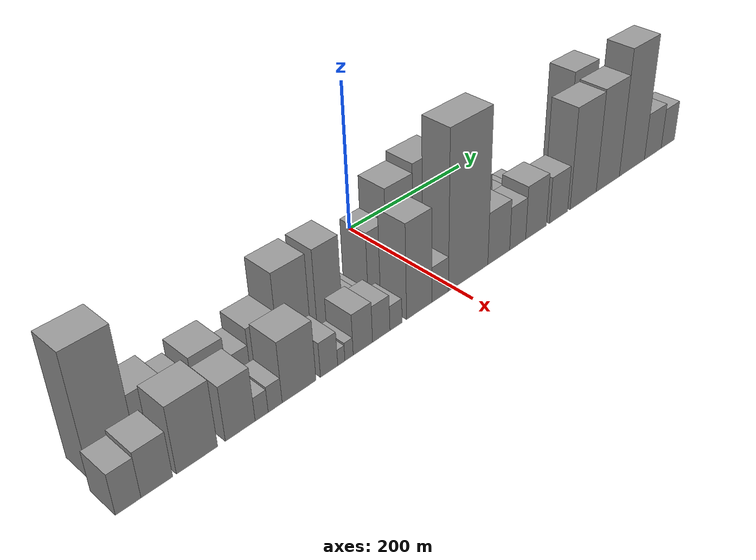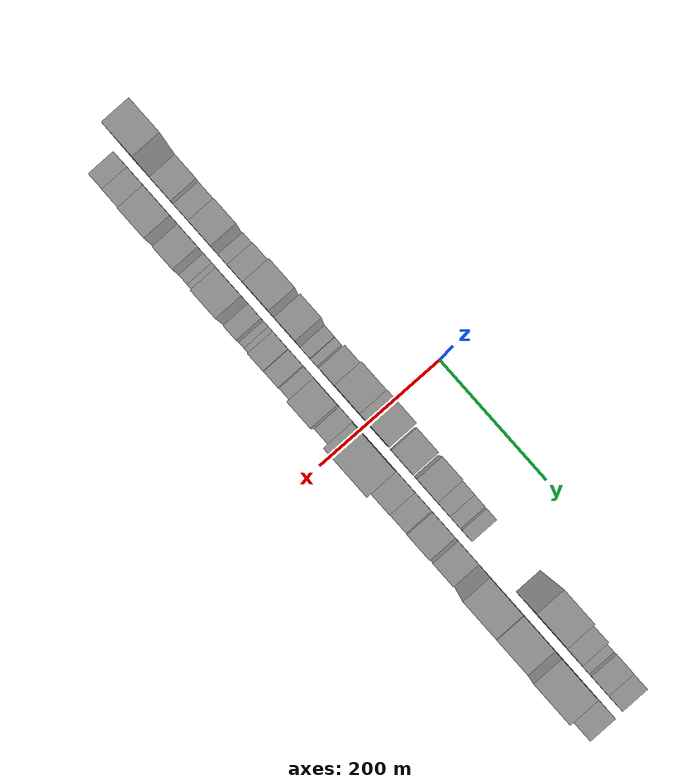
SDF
<sdf version="1.6">
 <world name="default">
  <scene>
   <sky><clouds><speed>12</speed></clouds></sky>
   <ambient>0.4 0.4 0.4 1</ambient>
   <background>0.7 0.7 0.7 1</background>
   <shadows>1</shadows>
  </scene>
  <gravity>0 0 -9.8066</gravity>
  <magnetic_field>6e-06 2.3e-05 -4.2e-05</magnetic_field>
  <physics default="0" name="default_physics" type="ode">
   <ode>
    <solver>
     <type>quick</type>
     <iters>10</iters>
     <sor>1.0</sor>
     <use_dynamic_moi_rescaling>0</use_dynamic_moi_rescaling>
    </solver>
    <constraints>
     <cfm>0</cfm>
     <erp>0.2</erp>
     <contact_max_correcting_vel>100</contact_max_correcting_vel>
     <contact_surface_layer>0.001</contact_surface_layer>
    </constraints>
   </ode>
   <max_step_size>0.004</max_step_size>
   <real_time_factor>1</real_time_factor>
   <real_time_update_rate>250</real_time_update_rate>
  </physics>
  <light name="sun" type="directional">
   <pose>0 0 10 0 0 0</pose>
   <diffuse>0.8 0.8 0.8 1</diffuse>
   <specular>0.2 0.2 0.2 1</specular>
   <attenuation>
    <range>1000</range>
    <constant>0.9</constant>
    <linear>0.01</linear>
    <quadratic>0.001</quadratic>
   </attenuation>
   <direction>-0.5 0.1 -0.9</direction>
  </light>
  <model name="building_1">
   <static>1</static>
   <pose>100.0000 -411.8144 0 0.000000 0.000000 0.000000</pose>
   <link name="link">
    <pose>0 0 76.50 0 0 0</pose>
    <collision name="collision"><geometry><box><size>40.0000 50.3711 153.0000</size></box></geometry></collision>
    <visual name="visual">
     <cast_shadows>0</cast_shadows>
     <geometry><box><size>40.0000 50.3711 153.0000</size></box></geometry>
     <material>
      <script>
       <uri>model://grey_wall/materials/scripts</uri>
       <uri>model://grey_wall/materials/textures</uri>
       <name>vrc/grey_wall</name>
      </script>
     </material>
    </visual>
   </link>
  </model>
  <model name="building_2">
   <static>1</static>
   <pose>100.0000 -367.8173 0 0.000000 0.000000 0.000000</pose>
   <link name="link">
    <pose>0 0 34.50 0 0 0</pose>
    <collision name="collision"><geometry><box><size>40.0000 37.6232 69.0000</size></box></geometry></collision>
    <visual name="visual">
     <cast_shadows>0</cast_shadows>
     <geometry><box><size>40.0000 37.6232 69.0000</size></box></geometry>
     <material>
      <script>
       <uri>model://grey_wall/materials/scripts</uri>
       <uri>model://grey_wall/materials/textures</uri>
       <name>vrc/grey_wall</name>
      </script>
     </material>
    </visual>
   </link>
  </model>
  <model name="building_3">
   <static>1</static>
   <pose>100.0000 -335.0411 0 0.000000 0.000000 0.000000</pose>
   <link name="link">
    <pose>0 0 27.00 0 0 0</pose>
    <collision name="collision"><geometry><box><size>40.0000 27.9292 54.0000</size></box></geometry></collision>
    <visual name="visual">
     <cast_shadows>0</cast_shadows>
     <geometry><box><size>40.0000 27.9292 54.0000</size></box></geometry>
     <material>
      <script>
       <uri>model://grey_wall/materials/scripts</uri>
       <uri>model://grey_wall/materials/textures</uri>
       <name>vrc/grey_wall</name>
      </script>
     </material>
    </visual>
   </link>
  </model>
  <model name="building_4">
   <static>1</static>
   <pose>100.0000 -298.1483 0 0.000000 0.000000 0.000000</pose>
   <link name="link">
    <pose>0 0 34.50 0 0 0</pose>
    <collision name="collision"><geometry><box><size>40.0000 39.8563 69.0000</size></box></geometry></collision>
    <visual name="visual">
     <cast_shadows>0</cast_shadows>
     <geometry><box><size>40.0000 39.8563 69.0000</size></box></geometry>
     <material>
      <script>
       <uri>model://grey_wall/materials/scripts</uri>
       <uri>model://grey_wall/materials/textures</uri>
       <name>vrc/grey_wall</name>
      </script>
     </material>
    </visual>
   </link>
  </model>
  <model name="building_5">
   <static>1</static>
   <pose>100.0000 -274.9726 0 0.000000 0.000000 0.000000</pose>
   <link name="link">
    <pose>0 0 7.50 0 0 0</pose>
    <collision name="collision"><geometry><box><size>40.0000 6.4951 15.0000</size></box></geometry></collision>
    <visual name="visual">
     <cast_shadows>0</cast_shadows>
     <geometry><box><size>40.0000 6.4951 15.0000</size></box></geometry>
     <material>
      <script>
       <uri>model://grey_wall/materials/scripts</uri>
       <uri>model://grey_wall/materials/textures</uri>
       <name>vrc/grey_wall</name>
      </script>
     </material>
    </visual>
   </link>
  </model>
  <model name="building_6">
   <static>1</static>
   <pose>100.0000 -261.0082 0 0.000000 0.000000 0.000000</pose>
   <link name="link">
    <pose>0 0 21.00 0 0 0</pose>
    <collision name="collision"><geometry><box><size>40.0000 21.4337 42.0000</size></box></geometry></collision>
    <visual name="visual">
     <cast_shadows>0</cast_shadows>
     <geometry><box><size>40.0000 21.4337 42.0000</size></box></geometry>
     <material>
      <script>
       <uri>model://grey_wall/materials/scripts</uri>
       <uri>model://grey_wall/materials/textures</uri>
       <name>vrc/grey_wall</name>
      </script>
     </material>
    </visual>
   </link>
  </model>
  <model name="building_7">
   <static>1</static>
   <pose>100.0000 -231.8019 0 0.000000 0.000000 0.000000</pose>
   <link name="link">
    <pose>0 0 31.50 0 0 0</pose>
    <collision name="collision"><geometry><box><size>40.0000 36.9789 63.0000</size></box></geometry></collision>
    <visual name="visual">
     <cast_shadows>0</cast_shadows>
     <geometry><box><size>40.0000 36.9789 63.0000</size></box></geometry>
     <material>
      <script>
       <uri>model://grey_wall/materials/scripts</uri>
       <uri>model://grey_wall/materials/textures</uri>
       <name>vrc/grey_wall</name>
      </script>
     </material>
    </visual>
   </link>
  </model>
  <model name="building_8">
   <static>1</static>
   <pose>100.0000 -191.1744 0 0.000000 0.000000 0.000000</pose>
   <link name="link">
    <pose>0 0 55.50 0 0 0</pose>
    <collision name="collision"><geometry><box><size>40.0000 44.2762 111.0000</size></box></geometry></collision>
    <visual name="visual">
     <cast_shadows>0</cast_shadows>
     <geometry><box><size>40.0000 44.2762 111.0000</size></box></geometry>
     <material>
      <script>
       <uri>model://grey_wall/materials/scripts</uri>
       <uri>model://grey_wall/materials/textures</uri>
       <name>vrc/grey_wall</name>
      </script>
     </material>
    </visual>
   </link>
  </model>
  <model name="building_9">
   <static>1</static>
   <pose>100.0000 -165.9184 0 0.000000 0.000000 0.000000</pose>
   <link name="link">
    <pose>0 0 7.50 0 0 0</pose>
    <collision name="collision"><geometry><box><size>40.0000 6.2359 15.0000</size></box></geometry></collision>
    <visual name="visual">
     <cast_shadows>0</cast_shadows>
     <geometry><box><size>40.0000 6.2359 15.0000</size></box></geometry>
     <material>
      <script>
       <uri>model://grey_wall/materials/scripts</uri>
       <uri>model://grey_wall/materials/textures</uri>
       <name>vrc/grey_wall</name>
      </script>
     </material>
    </visual>
   </link>
  </model>
  <model name="building_10">
   <static>1</static>
   <pose>100.0000 -141.6907 0 0.000000 0.000000 0.000000</pose>
   <link name="link">
    <pose>0 0 55.50 0 0 0</pose>
    <collision name="collision"><geometry><box><size>40.0000 36.2195 111.0000</size></box></geometry></collision>
    <visual name="visual">
     <cast_shadows>0</cast_shadows>
     <geometry><box><size>40.0000 36.2195 111.0000</size></box></geometry>
     <material>
      <script>
       <uri>model://grey_wall/materials/scripts</uri>
       <uri>model://grey_wall/materials/textures</uri>
       <name>vrc/grey_wall</name>
      </script>
     </material>
    </visual>
   </link>
  </model>
  <model name="building_11">
   <static>1</static>
   <pose>100.0000 -114.3132 0 0.000000 0.000000 0.000000</pose>
   <link name="link">
    <pose>0 0 16.50 0 0 0</pose>
    <collision name="collision"><geometry><box><size>40.0000 18.5354 33.0000</size></box></geometry></collision>
    <visual name="visual">
     <cast_shadows>0</cast_shadows>
     <geometry><box><size>40.0000 18.5354 33.0000</size></box></geometry>
     <material>
      <script>
       <uri>model://grey_wall/materials/scripts</uri>
       <uri>model://grey_wall/materials/textures</uri>
       <name>vrc/grey_wall</name>
      </script>
     </material>
    </visual>
   </link>
  </model>
  <model name="building_12">
   <static>1</static>
   <pose>100.0000 -98.8612 0 0.000000 0.000000 0.000000</pose>
   <link name="link">
    <pose>0 0 13.50 0 0 0</pose>
    <collision name="collision"><geometry><box><size>40.0000 12.3686 27.0000</size></box></geometry></collision>
    <visual name="visual">
     <cast_shadows>0</cast_shadows>
     <geometry><box><size>40.0000 12.3686 27.0000</size></box></geometry>
     <material>
      <script>
       <uri>model://grey_wall/materials/scripts</uri>
       <uri>model://grey_wall/materials/textures</uri>
       <name>vrc/grey_wall</name>
      </script>
     </material>
    </visual>
   </link>
  </model>
  <model name="building_13">
   <static>1</static>
   <pose>100.0000 -69.9411 0 0.000000 0.000000 0.000000</pose>
   <link name="link">
    <pose>0 0 46.50 0 0 0</pose>
    <collision name="collision"><geometry><box><size>40.0000 29.4715 93.0000</size></box></geometry></collision>
    <visual name="visual">
     <cast_shadows>0</cast_shadows>
     <geometry><box><size>40.0000 29.4715 93.0000</size></box></geometry>
     <material>
      <script>
       <uri>model://grey_wall/materials/scripts</uri>
       <uri>model://grey_wall/materials/textures</uri>
       <name>vrc/grey_wall</name>
      </script>
     </material>
    </visual>
   </link>
  </model>
  <model name="building_14">
   <static>1</static>
   <pose>100.0000 -33.9210 0 0.000000 0.000000 0.000000</pose>
   <link name="link">
    <pose>0 0 67.50 0 0 0</pose>
    <collision name="collision"><geometry><box><size>40.0000 42.5688 135.0000</size></box></geometry></collision>
    <visual name="visual">
     <cast_shadows>0</cast_shadows>
     <geometry><box><size>40.0000 42.5688 135.0000</size></box></geometry>
     <material>
      <script>
       <uri>model://grey_wall/materials/scripts</uri>
       <uri>model://grey_wall/materials/textures</uri>
       <name>vrc/grey_wall</name>
      </script>
     </material>
    </visual>
   </link>
  </model>
  <model name="building_15">
   <static>1</static>
   <pose>100.0000 11.8636 0 0.000000 0.000000 0.000000</pose>
   <link name="link">
    <pose>0 0 73.50 0 0 0</pose>
    <collision name="collision"><geometry><box><size>40.0000 49.0002 147.0000</size></box></geometry></collision>
    <visual name="visual">
     <cast_shadows>0</cast_shadows>
     <geometry><box><size>40.0000 49.0002 147.0000</size></box></geometry>
     <material>
      <script>
       <uri>model://grey_wall/materials/scripts</uri>
       <uri>model://grey_wall/materials/textures</uri>
       <name>vrc/grey_wall</name>
      </script>
     </material>
    </visual>
   </link>
  </model>
  <model name="building_16">
   <static>1</static>
   <pose>100.0000 61.9835 0 0.000000 0.000000 0.000000</pose>
   <link name="link">
    <pose>0 0 34.50 0 0 0</pose>
    <collision name="collision"><geometry><box><size>40.0000 39.2396 69.0000</size></box></geometry></collision>
    <visual name="visual">
     <cast_shadows>0</cast_shadows>
     <geometry><box><size>40.0000 39.2396 69.0000</size></box></geometry>
     <material>
      <script>
       <uri>model://grey_wall/materials/scripts</uri>
       <uri>model://grey_wall/materials/textures</uri>
       <name>vrc/grey_wall</name>
      </script>
     </material>
    </visual>
   </link>
  </model>
  <model name="building_17">
   <static>1</static>
   <pose>100.0000 105.9616 0 0.000000 0.000000 0.000000</pose>
   <link name="link">
    <pose>0 0 36.00 0 0 0</pose>
    <collision name="collision"><geometry><box><size>40.0000 36.7165 72.0000</size></box></geometry></collision>
    <visual name="visual">
     <cast_shadows>0</cast_shadows>
     <geometry><box><size>40.0000 36.7165 72.0000</size></box></geometry>
     <material>
      <script>
       <uri>model://grey_wall/materials/scripts</uri>
       <uri>model://grey_wall/materials/textures</uri>
       <name>vrc/grey_wall</name>
      </script>
     </material>
    </visual>
   </link>
  </model>
  <model name="building_18">
   <static>1</static>
   <pose>100.0000 136.8657 0 0.000000 0.000000 0.000000</pose>
   <link name="link">
    <pose>0 0 22.50 0 0 0</pose>
    <collision name="collision"><geometry><box><size>40.0000 25.0917 45.0000</size></box></geometry></collision>
    <visual name="visual">
     <cast_shadows>0</cast_shadows>
     <geometry><box><size>40.0000 25.0917 45.0000</size></box></geometry>
     <material>
      <script>
       <uri>model://grey_wall/materials/scripts</uri>
       <uri>model://grey_wall/materials/textures</uri>
       <name>vrc/grey_wall</name>
      </script>
     </material>
    </visual>
   </link>
  </model>
  <model name="building_19">
   <static>1</static>
   <pose>100.0000 159.6267 0 0.000000 0.000000 0.000000</pose>
   <link name="link">
    <pose>0 0 18.00 0 0 0</pose>
    <collision name="collision"><geometry><box><size>40.0000 20.4303 36.0000</size></box></geometry></collision>
    <visual name="visual">
     <cast_shadows>0</cast_shadows>
     <geometry><box><size>40.0000 20.4303 36.0000</size></box></geometry>
     <material>
      <script>
       <uri>model://grey_wall/materials/scripts</uri>
       <uri>model://grey_wall/materials/textures</uri>
       <name>vrc/grey_wall</name>
      </script>
     </material>
    </visual>
   </link>
  </model>
  <model name="building_20">
   <static>1</static>
   <pose>100.0000 182.1407 0 0.000000 0.000000 0.000000</pose>
   <link name="link">
    <pose>0 0 16.50 0 0 0</pose>
    <collision name="collision"><geometry><box><size>40.0000 18.5978 33.0000</size></box></geometry></collision>
    <visual name="visual">
     <cast_shadows>0</cast_shadows>
     <geometry><box><size>40.0000 18.5978 33.0000</size></box></geometry>
     <material>
      <script>
       <uri>model://grey_wall/materials/scripts</uri>
       <uri>model://grey_wall/materials/textures</uri>
       <name>vrc/grey_wall</name>
      </script>
     </material>
    </visual>
   </link>
  </model>
  <model name="building_21">
   <static>1</static>
   <pose>100.0000 304.6281 0 0.000000 0.000000 0.000000</pose>
   <link name="link">
    <pose>0 0 75.00 0 0 0</pose>
    <collision name="collision"><geometry><box><size>40.0000 50.7923 150.0000</size></box></geometry></collision>
    <visual name="visual">
     <cast_shadows>0</cast_shadows>
     <geometry><box><size>40.0000 50.7923 150.0000</size></box></geometry>
     <material>
      <script>
       <uri>model://grey_wall/materials/scripts</uri>
       <uri>model://grey_wall/materials/textures</uri>
       <name>vrc/grey_wall</name>
      </script>
     </material>
    </visual>
   </link>
  </model>
  <model name="building_22">
   <static>1</static>
   <pose>100.0000 350.2677 0 0.000000 0.000000 0.000000</pose>
   <link name="link">
    <pose>0 0 51.00 0 0 0</pose>
    <collision name="collision"><geometry><box><size>40.0000 40.4869 102.0000</size></box></geometry></collision>
    <visual name="visual">
     <cast_shadows>0</cast_shadows>
     <geometry><box><size>40.0000 40.4869 102.0000</size></box></geometry>
     <material>
      <script>
       <uri>model://grey_wall/materials/scripts</uri>
       <uri>model://grey_wall/materials/textures</uri>
       <name>vrc/grey_wall</name>
      </script>
     </material>
    </visual>
   </link>
  </model>
  <model name="building_23">
   <static>1</static>
   <pose>100.0000 389.9791 0 0.000000 0.000000 0.000000</pose>
   <link name="link">
    <pose>0 0 21.00 0 0 0</pose>
    <collision name="collision"><geometry><box><size>40.0000 24.9360 42.0000</size></box></geometry></collision>
    <visual name="visual">
     <cast_shadows>0</cast_shadows>
     <geometry><box><size>40.0000 24.9360 42.0000</size></box></geometry>
     <material>
      <script>
       <uri>model://grey_wall/materials/scripts</uri>
       <uri>model://grey_wall/materials/textures</uri>
       <name>vrc/grey_wall</name>
      </script>
     </material>
    </visual>
   </link>
  </model>
  <model name="building_24">
   <static>1</static>
   <pose>100.0000 418.0944 0 0.000000 0.000000 0.000000</pose>
   <link name="link">
    <pose>0 0 27.00 0 0 0</pose>
    <collision name="collision"><geometry><box><size>40.0000 31.2947 54.0000</size></box></geometry></collision>
    <visual name="visual">
     <cast_shadows>0</cast_shadows>
     <geometry><box><size>40.0000 31.2947 54.0000</size></box></geometry>
     <material>
      <script>
       <uri>model://grey_wall/materials/scripts</uri>
       <uri>model://grey_wall/materials/textures</uri>
       <name>vrc/grey_wall</name>
      </script>
     </material>
    </visual>
   </link>
  </model>
  <model name="building_25">
   <static>1</static>
   <pose>100.0000 447.2042 0 0.000000 0.000000 0.000000</pose>
   <link name="link">
    <pose>0 0 24.00 0 0 0</pose>
    <collision name="collision"><geometry><box><size>40.0000 26.9249 48.0000</size></box></geometry></collision>
    <visual name="visual">
     <cast_shadows>0</cast_shadows>
     <geometry><box><size>40.0000 26.9249 48.0000</size></box></geometry>
     <material>
      <script>
       <uri>model://grey_wall/materials/scripts</uri>
       <uri>model://grey_wall/materials/textures</uri>
       <name>vrc/grey_wall</name>
      </script>
     </material>
    </visual>
   </link>
  </model>
  <model name="building_26">
   <static>1</static>
   <pose>152.0000 -430.6782 0 0.000000 0.000000 0.000000</pose>
   <link name="link">
    <pose>0 0 25.50 0 0 0</pose>
    <collision name="collision"><geometry><box><size>40.0000 26.6437 51.0000</size></box></geometry></collision>
    <visual name="visual">
     <cast_shadows>0</cast_shadows>
     <geometry><box><size>40.0000 26.6437 51.0000</size></box></geometry>
     <material>
      <script>
       <uri>model://grey_wall/materials/scripts</uri>
       <uri>model://grey_wall/materials/textures</uri>
       <name>vrc/grey_wall</name>
      </script>
     </material>
    </visual>
   </link>
  </model>
  <model name="building_27">
   <static>1</static>
   <pose>152.0000 -400.2870 0 0.000000 0.000000 0.000000</pose>
   <link name="link">
    <pose>0 0 28.50 0 0 0</pose>
    <collision name="collision"><geometry><box><size>40.0000 34.1387 57.0000</size></box></geometry></collision>
    <visual name="visual">
     <cast_shadows>0</cast_shadows>
     <geometry><box><size>40.0000 34.1387 57.0000</size></box></geometry>
     <material>
      <script>
       <uri>model://grey_wall/materials/scripts</uri>
       <uri>model://grey_wall/materials/textures</uri>
       <name>vrc/grey_wall</name>
      </script>
     </material>
    </visual>
   </link>
  </model>
  <model name="building_28">
   <static>1</static>
   <pose>152.0000 -355.7725 0 0.000000 0.000000 0.000000</pose>
   <link name="link">
    <pose>0 0 42.00 0 0 0</pose>
    <collision name="collision"><geometry><box><size>40.0000 46.8903 84.0000</size></box></geometry></collision>
    <visual name="visual">
     <cast_shadows>0</cast_shadows>
     <geometry><box><size>40.0000 46.8903 84.0000</size></box></geometry>
     <material>
      <script>
       <uri>model://grey_wall/materials/scripts</uri>
       <uri>model://grey_wall/materials/textures</uri>
       <name>vrc/grey_wall</name>
      </script>
     </material>
    </visual>
   </link>
  </model>
  <model name="building_29">
   <static>1</static>
   <pose>152.0000 -305.3131 0 0.000000 0.000000 0.000000</pose>
   <link name="link">
    <pose>0 0 34.50 0 0 0</pose>
    <collision name="collision"><geometry><box><size>40.0000 36.0286 69.0000</size></box></geometry></collision>
    <visual name="visual">
     <cast_shadows>0</cast_shadows>
     <geometry><box><size>40.0000 36.0286 69.0000</size></box></geometry>
     <material>
      <script>
       <uri>model://grey_wall/materials/scripts</uri>
       <uri>model://grey_wall/materials/textures</uri>
       <name>vrc/grey_wall</name>
      </script>
     </material>
    </visual>
   </link>
  </model>
  <model name="building_30">
   <static>1</static>
   <pose>152.0000 -279.1874 0 0.000000 0.000000 0.000000</pose>
   <link name="link">
    <pose>0 0 15.00 0 0 0</pose>
    <collision name="collision"><geometry><box><size>40.0000 16.2227 30.0000</size></box></geometry></collision>
    <visual name="visual">
     <cast_shadows>0</cast_shadows>
     <geometry><box><size>40.0000 16.2227 30.0000</size></box></geometry>
     <material>
      <script>
       <uri>model://grey_wall/materials/scripts</uri>
       <uri>model://grey_wall/materials/textures</uri>
       <name>vrc/grey_wall</name>
      </script>
     </material>
    </visual>
   </link>
  </model>
  <model name="building_31">
   <static>1</static>
   <pose>152.0000 -262.1687 0 0.000000 0.000000 0.000000</pose>
   <link name="link">
    <pose>0 0 16.50 0 0 0</pose>
    <collision name="collision"><geometry><box><size>40.0000 17.8147 33.0000</size></box></geometry></collision>
    <visual name="visual">
     <cast_shadows>0</cast_shadows>
     <geometry><box><size>40.0000 17.8147 33.0000</size></box></geometry>
     <material>
      <script>
       <uri>model://grey_wall/materials/scripts</uri>
       <uri>model://grey_wall/materials/textures</uri>
       <name>vrc/grey_wall</name>
      </script>
     </material>
    </visual>
   </link>
  </model>
  <model name="building_32">
   <static>1</static>
   <pose>152.0000 -230.9816 0 0.000000 0.000000 0.000000</pose>
   <link name="link">
    <pose>0 0 39.00 0 0 0</pose>
    <collision name="collision"><geometry><box><size>40.0000 44.5595 78.0000</size></box></geometry></collision>
    <visual name="visual">
     <cast_shadows>0</cast_shadows>
     <geometry><box><size>40.0000 44.5595 78.0000</size></box></geometry>
     <material>
      <script>
       <uri>model://grey_wall/materials/scripts</uri>
       <uri>model://grey_wall/materials/textures</uri>
       <name>vrc/grey_wall</name>
      </script>
     </material>
    </visual>
   </link>
  </model>
  <model name="building_33">
   <static>1</static>
   <pose>152.0000 -190.8037 0 0.000000 0.000000 0.000000</pose>
   <link name="link">
    <pose>0 0 22.50 0 0 0</pose>
    <collision name="collision"><geometry><box><size>40.0000 23.7963 45.0000</size></box></geometry></collision>
    <visual name="visual">
     <cast_shadows>0</cast_shadows>
     <geometry><box><size>40.0000 23.7963 45.0000</size></box></geometry>
     <material>
      <script>
       <uri>model://grey_wall/materials/scripts</uri>
       <uri>model://grey_wall/materials/textures</uri>
       <name>vrc/grey_wall</name>
      </script>
     </material>
    </visual>
   </link>
  </model>
  <model name="building_34">
   <static>1</static>
   <pose>152.0000 -173.8862 0 0.000000 0.000000 0.000000</pose>
   <link name="link">
    <pose>0 0 10.50 0 0 0</pose>
    <collision name="collision"><geometry><box><size>40.0000 10.0388 21.0000</size></box></geometry></collision>
    <visual name="visual">
     <cast_shadows>0</cast_shadows>
     <geometry><box><size>40.0000 10.0388 21.0000</size></box></geometry>
     <material>
      <script>
       <uri>model://grey_wall/materials/scripts</uri>
       <uri>model://grey_wall/materials/textures</uri>
       <name>vrc/grey_wall</name>
      </script>
     </material>
    </visual>
   </link>
  </model>
  <model name="building_35">
   <static>1</static>
   <pose>152.0000 -162.9440 0 0.000000 0.000000 0.000000</pose>
   <link name="link">
    <pose>0 0 12.00 0 0 0</pose>
    <collision name="collision"><geometry><box><size>40.0000 11.8456 24.0000</size></box></geometry></collision>
    <visual name="visual">
     <cast_shadows>0</cast_shadows>
     <geometry><box><size>40.0000 11.8456 24.0000</size></box></geometry>
     <material>
      <script>
       <uri>model://grey_wall/materials/scripts</uri>
       <uri>model://grey_wall/materials/textures</uri>
       <name>vrc/grey_wall</name>
      </script>
     </material>
    </visual>
   </link>
  </model>
  <model name="building_36">
   <static>1</static>
   <pose>152.0000 -142.9809 0 0.000000 0.000000 0.000000</pose>
   <link name="link">
    <pose>0 0 27.00 0 0 0</pose>
    <collision name="collision"><geometry><box><size>40.0000 28.0806 54.0000</size></box></geometry></collision>
    <visual name="visual">
     <cast_shadows>0</cast_shadows>
     <geometry><box><size>40.0000 28.0806 54.0000</size></box></geometry>
     <material>
      <script>
       <uri>model://grey_wall/materials/scripts</uri>
       <uri>model://grey_wall/materials/textures</uri>
       <name>vrc/grey_wall</name>
      </script>
     </material>
    </visual>
   </link>
  </model>
  <model name="building_37">
   <static>1</static>
   <pose>152.0000 -115.9378 0 0.000000 0.000000 0.000000</pose>
   <link name="link">
    <pose>0 0 24.00 0 0 0</pose>
    <collision name="collision"><geometry><box><size>40.0000 26.0056 48.0000</size></box></geometry></collision>
    <visual name="visual">
     <cast_shadows>0</cast_shadows>
     <geometry><box><size>40.0000 26.0056 48.0000</size></box></geometry>
     <material>
      <script>
       <uri>model://grey_wall/materials/scripts</uri>
       <uri>model://grey_wall/materials/textures</uri>
       <name>vrc/grey_wall</name>
      </script>
     </material>
    </visual>
   </link>
  </model>
  <model name="building_38">
   <static>1</static>
   <pose>152.0000 -93.6274 0 0.000000 0.000000 0.000000</pose>
   <link name="link">
    <pose>0 0 16.50 0 0 0</pose>
    <collision name="collision"><geometry><box><size>40.0000 18.6151 33.0000</size></box></geometry></collision>
    <visual name="visual">
     <cast_shadows>0</cast_shadows>
     <geometry><box><size>40.0000 18.6151 33.0000</size></box></geometry>
     <material>
      <script>
       <uri>model://grey_wall/materials/scripts</uri>
       <uri>model://grey_wall/materials/textures</uri>
       <name>vrc/grey_wall</name>
      </script>
     </material>
    </visual>
   </link>
  </model>
  <model name="building_39">
   <static>1</static>
   <pose>152.0000 -57.3178 0 0.000000 0.000000 0.000000</pose>
   <link name="link">
    <pose>0 0 63.00 0 0 0</pose>
    <collision name="collision"><geometry><box><size>40.0000 40.0042 126.0000</size></box></geometry></collision>
    <visual name="visual">
     <cast_shadows>0</cast_shadows>
     <geometry><box><size>40.0000 40.0042 126.0000</size></box></geometry>
     <material>
      <script>
       <uri>model://grey_wall/materials/scripts</uri>
       <uri>model://grey_wall/materials/textures</uri>
       <name>vrc/grey_wall</name>
      </script>
     </material>
    </visual>
   </link>
  </model>
  <model name="building_40">
   <static>1</static>
   <pose>152.0000 -23.5763 0 0.000000 0.000000 0.000000</pose>
   <link name="link">
    <pose>0 0 24.00 0 0 0</pose>
    <collision name="collision"><geometry><box><size>40.0000 27.4788 48.0000</size></box></geometry></collision>
    <visual name="visual">
     <cast_shadows>0</cast_shadows>
     <geometry><box><size>40.0000 27.4788 48.0000</size></box></geometry>
     <material>
      <script>
       <uri>model://grey_wall/materials/scripts</uri>
       <uri>model://grey_wall/materials/textures</uri>
       <name>vrc/grey_wall</name>
      </script>
     </material>
    </visual>
   </link>
  </model>
  <model name="building_41">
   <static>1</static>
   <pose>152.0000 24.2191 0 0.000000 0.000000 0.000000</pose>
   <link name="link">
    <pose>0 0 105.00 0 0 0</pose>
    <collision name="collision"><geometry><box><size>40.0000 68.1120 210.0000</size></box></geometry></collision>
    <visual name="visual">
     <cast_shadows>0</cast_shadows>
     <geometry><box><size>40.0000 68.1120 210.0000</size></box></geometry>
     <material>
      <script>
       <uri>model://grey_wall/materials/scripts</uri>
       <uri>model://grey_wall/materials/textures</uri>
       <name>vrc/grey_wall</name>
      </script>
     </material>
    </visual>
   </link>
  </model>
  <model name="building_42">
   <static>1</static>
   <pose>152.0000 78.1124 0 0.000000 0.000000 0.000000</pose>
   <link name="link">
    <pose>0 0 36.00 0 0 0</pose>
    <collision name="collision"><geometry><box><size>40.0000 39.6745 72.0000</size></box></geometry></collision>
    <visual name="visual">
     <cast_shadows>0</cast_shadows>
     <geometry><box><size>40.0000 39.6745 72.0000</size></box></geometry>
     <material>
      <script>
       <uri>model://grey_wall/materials/scripts</uri>
       <uri>model://grey_wall/materials/textures</uri>
       <name>vrc/grey_wall</name>
      </script>
     </material>
    </visual>
   </link>
  </model>
  <model name="building_43">
   <static>1</static>
   <pose>152.0000 113.0897 0 0.000000 0.000000 0.000000</pose>
   <link name="link">
    <pose>0 0 30.00 0 0 0</pose>
    <collision name="collision"><geometry><box><size>40.0000 30.2802 60.0000</size></box></geometry></collision>
    <visual name="visual">
     <cast_shadows>0</cast_shadows>
     <geometry><box><size>40.0000 30.2802 60.0000</size></box></geometry>
     <material>
      <script>
       <uri>model://grey_wall/materials/scripts</uri>
       <uri>model://grey_wall/materials/textures</uri>
       <name>vrc/grey_wall</name>
      </script>
     </material>
    </visual>
   </link>
  </model>
  <model name="building_44">
   <static>1</static>
   <pose>152.0000 148.4906 0 0.000000 0.000000 0.000000</pose>
   <link name="link">
    <pose>0 0 37.50 0 0 0</pose>
    <collision name="collision"><geometry><box><size>40.0000 40.5215 75.0000</size></box></geometry></collision>
    <visual name="visual">
     <cast_shadows>0</cast_shadows>
     <geometry><box><size>40.0000 40.5215 75.0000</size></box></geometry>
     <material>
      <script>
       <uri>model://grey_wall/materials/scripts</uri>
       <uri>model://grey_wall/materials/textures</uri>
       <name>vrc/grey_wall</name>
      </script>
     </material>
    </visual>
   </link>
  </model>
  <model name="building_45">
   <static>1</static>
   <pose>152.0000 193.2063 0 0.000000 0.000000 0.000000</pose>
   <link name="link">
    <pose>0 0 33.00 0 0 0</pose>
    <collision name="collision"><geometry><box><size>40.0000 36.9098 66.0000</size></box></geometry></collision>
    <visual name="visual">
     <cast_shadows>0</cast_shadows>
     <geometry><box><size>40.0000 36.9098 66.0000</size></box></geometry>
     <material>
      <script>
       <uri>model://grey_wall/materials/scripts</uri>
       <uri>model://grey_wall/materials/textures</uri>
       <name>vrc/grey_wall</name>
      </script>
     </material>
    </visual>
   </link>
  </model>
  <model name="building_46">
   <static>1</static>
   <pose>152.0000 244.5195 0 0.000000 0.000000 0.000000</pose>
   <link name="link">
    <pose>0 0 72.00 0 0 0</pose>
    <collision name="collision"><geometry><box><size>40.0000 55.7166 144.0000</size></box></geometry></collision>
    <visual name="visual">
     <cast_shadows>0</cast_shadows>
     <geometry><box><size>40.0000 55.7166 144.0000</size></box></geometry>
     <material>
      <script>
       <uri>model://grey_wall/materials/scripts</uri>
       <uri>model://grey_wall/materials/textures</uri>
       <name>vrc/grey_wall</name>
      </script>
     </material>
    </visual>
   </link>
  </model>
  <model name="building_47">
   <static>1</static>
   <pose>152.0000 298.2080 0 0.000000 0.000000 0.000000</pose>
   <link name="link">
    <pose>0 0 73.50 0 0 0</pose>
    <collision name="collision"><geometry><box><size>40.0000 51.6605 147.0000</size></box></geometry></collision>
    <visual name="visual">
     <cast_shadows>0</cast_shadows>
     <geometry><box><size>40.0000 51.6605 147.0000</size></box></geometry>
     <material>
      <script>
       <uri>model://grey_wall/materials/scripts</uri>
       <uri>model://grey_wall/materials/textures</uri>
       <name>vrc/grey_wall</name>
      </script>
     </material>
    </visual>
   </link>
  </model>
  <model name="building_48">
   <static>1</static>
   <pose>152.0000 353.3754 0 0.000000 0.000000 0.000000</pose>
   <link name="link">
    <pose>0 0 91.50 0 0 0</pose>
    <collision name="collision"><geometry><box><size>40.0000 58.6742 183.0000</size></box></geometry></collision>
    <visual name="visual">
     <cast_shadows>0</cast_shadows>
     <geometry><box><size>40.0000 58.6742 183.0000</size></box></geometry>
     <material>
      <script>
       <uri>model://grey_wall/materials/scripts</uri>
       <uri>model://grey_wall/materials/textures</uri>
       <name>vrc/grey_wall</name>
      </script>
     </material>
    </visual>
   </link>
  </model>
  <model name="building_49">
   <static>1</static>
   <pose>152.0000 403.1092 0 0.000000 0.000000 0.000000</pose>
   <link name="link">
    <pose>0 0 34.50 0 0 0</pose>
    <collision name="collision"><geometry><box><size>40.0000 40.7935 69.0000</size></box></geometry></collision>
    <visual name="visual">
     <cast_shadows>0</cast_shadows>
     <geometry><box><size>40.0000 40.7935 69.0000</size></box></geometry>
     <material>
      <script>
       <uri>model://grey_wall/materials/scripts</uri>
       <uri>model://grey_wall/materials/textures</uri>
       <name>vrc/grey_wall</name>
      </script>
     </material>
    </visual>
   </link>
  </model>
  <model name="building_50">
   <static>1</static>
   <pose>152.0000 440.3107 0 0.000000 0.000000 0.000000</pose>
   <link name="link">
    <pose>0 0 30.00 0 0 0</pose>
    <collision name="collision"><geometry><box><size>40.0000 33.6095 60.0000</size></box></geometry></collision>
    <visual name="visual">
     <cast_shadows>0</cast_shadows>
     <geometry><box><size>40.0000 33.6095 60.0000</size></box></geometry>
     <material>
      <script>
       <uri>model://grey_wall/materials/scripts</uri>
       <uri>model://grey_wall/materials/textures</uri>
       <name>vrc/grey_wall</name>
      </script>
     </material>
    </visual>
   </link>
  </model>
 </world>
</sdf>
